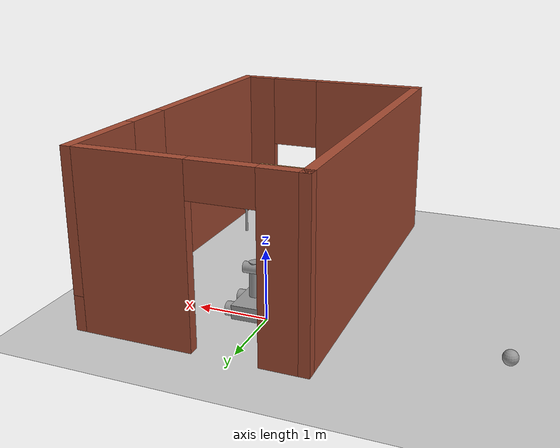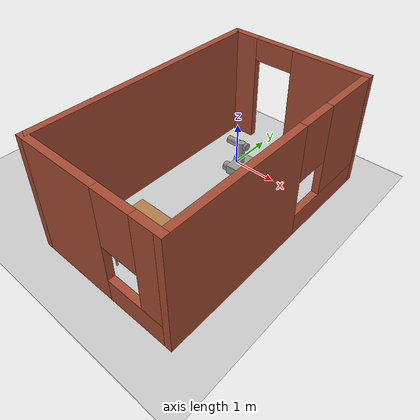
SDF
<sdf version="1.7">
 <world name="default">
  <plugin name="hello" filename="libhello.so"/>
  <light name="sun" type="directional">
   <pose>0 0 10 0 -0 0</pose>
   <diffuse>0.8 0.8 0.8 1</diffuse>
   <specular>0.2 0.2 0.2 1</specular>
   <attenuation>
    <range>1000</range>
    <constant>0.9</constant>
    <linear>0.01</linear>
    <quadratic>0.001</quadratic>
   </attenuation>
   <direction>-0.5 0.1 -0.9</direction>
   <spot><inner_angle>0</inner_angle><outer_angle>0</outer_angle><falloff>0</falloff></spot>
  </light>
  <model name="ground_plane">
   <static>1</static>
   <link name="link">
    <collision name="collision">
     <geometry><plane><normal>0 0 1</normal><size>100 100</size></plane></geometry>
     <surface>
      <contact><collide_bitmask>65535</collide_bitmask></contact>
      <friction><ode><mu>100</mu><mu2>50</mu2></ode></friction>
     </surface>
    </collision>
    <visual name="visual">
     <cast_shadows>0</cast_shadows>
     <geometry><plane><normal>0 0 1</normal><size>100 100</size></plane></geometry>
     <material>
      <script><uri>file://media/materials/scripts/gazebo.material</uri><name>Gazebo/Grey</name></script>
     </material>
    </visual>
   </link>
  </model>
  <gravity>0 0 -9.8</gravity>
  <magnetic_field>6e-06 2.3e-05 -4.2e-05</magnetic_field>
  <atmosphere type="adiabatic"/>
  <physics type="ode">
   <max_step_size>0.001</max_step_size>
   <real_time_factor>1</real_time_factor>
   <real_time_update_rate>1000</real_time_update_rate>
  </physics>
  <scene><ambient>0.4 0.4 0.4 1</ambient><background>0.7 0.7 0.7 1</background><shadows>1</shadows></scene>
  <spherical_coordinates>
   <surface_model>EARTH_WGS84</surface_model>
   <latitude_deg>0</latitude_deg>
   <longitude_deg>0</longitude_deg>
   <elevation>0</elevation>
   <heading_deg>0</heading_deg>
  </spherical_coordinates>
  <model name="Building">
   <pose>0.57 -1.52531 0 0 -0 0</pose>
   <link name="Wall_0">
    <pose>0 -2.63469 0 0 -0 0</pose>
    <visual name="Wall_0_Visual_0">
     <pose>-0.7075 0 1.25 0 -0 0</pose>
     <geometry><box><size>1.835 0.15 2.5</size></box></geometry>
     <material>
      <script><uri>file://media/materials/scripts/gazebo.material</uri><name>Gazebo/Bricks</name></script>
      <ambient>1 1 1 1</ambient>
     </material>
     <meta><layer>0</layer></meta>
    </visual>
    <collision name="Wall_0_Collision_0">
     <geometry><box><size>1.835 0.15 2.5</size></box></geometry>
     <pose>-0.7075 0 1.25 0 -0 0</pose>
    </collision>
    <visual name="Wall_0_Visual_1">
     <pose>0.9175 0 0.25 0 -0 0</pose>
     <geometry><box><size>1.415 0.15 0.5</size></box></geometry>
     <material>
      <script><uri>file://media/materials/scripts/gazebo.material</uri><name>Gazebo/Bricks</name></script>
      <ambient>1 1 1 1</ambient>
     </material>
     <meta><layer>0</layer></meta>
    </visual>
    <collision name="Wall_0_Collision_1">
     <geometry><box><size>1.415 0.15 0.5</size></box></geometry>
     <pose>0.9175 0 0.25 0 -0 0</pose>
    </collision>
    <visual name="Wall_0_Visual_2">
     <pose>1.3175 0 1.5 0 -0 0</pose>
     <geometry><box><size>0.615 0.15 2</size></box></geometry>
     <material>
      <script><uri>file://media/materials/scripts/gazebo.material</uri><name>Gazebo/Bricks</name></script>
      <ambient>1 1 1 1</ambient>
     </material>
     <meta><layer>0</layer></meta>
    </visual>
    <collision name="Wall_0_Collision_2">
     <geometry><box><size>0.615 0.15 2</size></box></geometry>
     <pose>1.3175 0 1.5 0 -0 0</pose>
    </collision>
    <visual name="Wall_0_Visual_3">
     <pose>0.61 0 1.9 0 -0 0</pose>
     <geometry><box><size>0.8 0.15 1.2</size></box></geometry>
     <material>
      <script><uri>file://media/materials/scripts/gazebo.material</uri><name>Gazebo/Bricks</name></script>
      <ambient>1 1 1 1</ambient>
     </material>
     <meta><layer>0</layer></meta>
    </visual>
    <collision name="Wall_0_Collision_3">
     <geometry><box><size>0.8 0.15 1.2</size></box></geometry>
     <pose>0.61 0 1.9 0 -0 0</pose>
    </collision>
   </link>
   <link name="Wall_1">
    <pose>1.55 -0 0 0 -0 1.5708</pose>
    <visual name="Wall_1_Visual_0">
     <pose>-1.1075 0 1.25 0 -0 0</pose>
     <geometry><box><size>3.20444 0.15 2.5</size></box></geometry>
     <material>
      <script><uri>file://media/materials/scripts/gazebo.material</uri><name>Gazebo/Bricks</name></script>
      <ambient>1 1 1 1</ambient>
     </material>
     <meta><layer>0</layer></meta>
    </visual>
    <collision name="Wall_1_Collision_0">
     <geometry><box><size>3.20444 0.15 2.5</size></box></geometry>
     <pose>-1.1075 0 1.25 0 -0 0</pose>
    </collision>
    <visual name="Wall_1_Visual_1">
     <pose>1.60222 0 0.25 0 -0 0</pose>
     <geometry><box><size>2.21499 0.15 0.5</size></box></geometry>
     <material>
      <script><uri>file://media/materials/scripts/gazebo.material</uri><name>Gazebo/Bricks</name></script>
      <ambient>1 1 1 1</ambient>
     </material>
     <meta><layer>0</layer></meta>
    </visual>
    <collision name="Wall_1_Collision_1">
     <geometry><box><size>2.21499 0.15 0.5</size></box></geometry>
     <pose>1.60222 0 0.25 0 -0 0</pose>
    </collision>
    <visual name="Wall_1_Visual_2">
     <pose>2.00222 0 1.5 0 -0 0</pose>
     <geometry><box><size>1.41499 0.15 2</size></box></geometry>
     <material>
      <script><uri>file://media/materials/scripts/gazebo.material</uri><name>Gazebo/Bricks</name></script>
      <ambient>1 1 1 1</ambient>
     </material>
     <meta><layer>0</layer></meta>
    </visual>
    <collision name="Wall_1_Collision_2">
     <geometry><box><size>1.41499 0.15 2</size></box></geometry>
     <pose>2.00222 0 1.5 0 -0 0</pose>
    </collision>
    <visual name="Wall_1_Visual_3">
     <pose>0.894725 0 1.9 0 -0 0</pose>
     <geometry><box><size>0.8 0.15 1.2</size></box></geometry>
     <material>
      <script><uri>file://media/materials/scripts/gazebo.material</uri><name>Gazebo/Bricks</name></script>
      <ambient>1 1 1 1</ambient>
     </material>
     <meta><layer>0</layer></meta>
    </visual>
    <collision name="Wall_1_Collision_3">
     <geometry><box><size>0.8 0.15 1.2</size></box></geometry>
     <pose>0.894725 0 1.9 0 -0 0</pose>
    </collision>
   </link>
   <link name="Wall_2">
    <pose>0 2.63469 0 0 -0 3.14159</pose>
    <visual name="Wall_2_Visual_0">
     <pose>-0.781353 0 1.25 0 -0 0</pose>
     <geometry><box><size>1.68729 0.15 2.5</size></box></geometry>
     <material>
      <script><uri>file://media/materials/scripts/gazebo.material</uri><name>Gazebo/Bricks</name></script>
      <ambient>1 1 1 1</ambient>
     </material>
     <meta><layer>0</layer></meta>
    </visual>
    <collision name="Wall_2_Collision_0">
     <geometry><box><size>1.68729 0.15 2.5</size></box></geometry>
     <pose>-0.781353 0 1.25 0 -0 0</pose>
    </collision>
    <visual name="Wall_2_Visual_1">
     <pose>1.29365 0 1.25 0 -0 0</pose>
     <geometry><box><size>0.662706 0.15 2.5</size></box></geometry>
     <material>
      <script><uri>file://media/materials/scripts/gazebo.material</uri><name>Gazebo/Bricks</name></script>
      <ambient>1 1 1 1</ambient>
     </material>
     <meta><layer>0</layer></meta>
    </visual>
    <collision name="Wall_2_Collision_1">
     <geometry><box><size>0.662706 0.15 2.5</size></box></geometry>
     <pose>1.29365 0 1.25 0 -0 0</pose>
    </collision>
    <visual name="Wall_2_Visual_2">
     <pose>0.512294 0 2.25 0 -0 0</pose>
     <geometry><box><size>0.9 0.15 0.5</size></box></geometry>
     <material>
      <script><uri>file://media/materials/scripts/gazebo.material</uri><name>Gazebo/Bricks</name></script>
      <ambient>1 1 1 1</ambient>
     </material>
     <meta><layer>0</layer></meta>
    </visual>
    <collision name="Wall_2_Collision_2">
     <geometry><box><size>0.9 0.15 0.5</size></box></geometry>
     <pose>0.512294 0 2.25 0 -0 0</pose>
    </collision>
   </link>
   <link name="Wall_3">
    <collision name="Wall_3_Collision">
     <geometry><box><size>5.41944 0.15 2.5</size></box></geometry>
     <pose>0 0 1.25 0 -0 0</pose>
    </collision>
    <visual name="Wall_3_Visual">
     <pose>0 0 1.25 0 -0 0</pose>
     <geometry><box><size>5.41944 0.15 2.5</size></box></geometry>
     <material>
      <script><uri>file://media/materials/scripts/gazebo.material</uri><name>Gazebo/Bricks</name></script>
      <ambient>1 1 1 1</ambient>
     </material>
     <meta><layer>0</layer></meta>
    </visual>
    <pose>-1.55 -0 0 0 -0 -1.5708</pose>
   </link>
   <static>1</static>
  </model>
  <light name="user_point_light_0" type="point">
   <pose>0.57585 -1.92852 1 0 -0 0</pose>
   <diffuse>0.5 0.5 0.5 1</diffuse>
   <specular>0.1 0.1 0.1 1</specular>
   <attenuation>
    <range>20</range>
    <constant>0.5</constant>
    <linear>0.01</linear>
    <quadratic>0.001</quadratic>
   </attenuation>
   <cast_shadows>0</cast_shadows>
   <direction>0 0 -1</direction>
   <spot><inner_angle>0</inner_angle><outer_angle>0</outer_angle><falloff>0</falloff></spot>
  </light>
  <model name="table">
   <static>1</static>
   <link name="link">
    <collision name="surface">
     <pose>0 0 1 0 -0 0</pose>
     <geometry><box><size>1.5 0.8 0.03</size></box></geometry>
     <surface><friction><ode><mu>0.6</mu><mu2>0.6</mu2></ode></friction></surface>
    </collision>
    <visual name="visual1">
     <pose>0 0 1 0 -0 0</pose>
     <geometry><box><size>1.5 0.8 0.03</size></box></geometry>
     <material>
      <script><uri>file://media/materials/scripts/gazebo.material</uri><name>Gazebo/Wood</name></script>
     </material>
    </visual>
    <collision name="front_left_leg">
     <pose>0.68 0.38 0.5 0 -0 0</pose>
     <geometry><cylinder><radius>0.02</radius><length>1</length></cylinder></geometry>
    </collision>
    <visual name="front_left_leg">
     <pose>0.68 0.38 0.5 0 -0 0</pose>
     <geometry><cylinder><radius>0.02</radius><length>1</length></cylinder></geometry>
     <material>
      <script><uri>file://media/materials/scripts/gazebo.material</uri><name>Gazebo/Grey</name></script>
     </material>
    </visual>
    <collision name="front_right_leg">
     <pose>0.68 -0.38 0.5 0 -0 0</pose>
     <geometry><cylinder><radius>0.02</radius><length>1</length></cylinder></geometry>
    </collision>
    <visual name="front_right_leg">
     <pose>0.68 -0.38 0.5 0 -0 0</pose>
     <geometry><cylinder><radius>0.02</radius><length>1</length></cylinder></geometry>
     <material>
      <script><uri>file://media/materials/scripts/gazebo.material</uri><name>Gazebo/Grey</name></script>
     </material>
    </visual>
    <collision name="back_right_leg">
     <pose>-0.68 -0.38 0.5 0 -0 0</pose>
     <geometry><cylinder><radius>0.02</radius><length>1</length></cylinder></geometry>
    </collision>
    <visual name="back_right_leg">
     <pose>-0.68 -0.38 0.5 0 -0 0</pose>
     <geometry><cylinder><radius>0.02</radius><length>1</length></cylinder></geometry>
     <material>
      <script><uri>file://media/materials/scripts/gazebo.material</uri><name>Gazebo/Grey</name></script>
     </material>
    </visual>
    <collision name="back_left_leg">
     <pose>-0.68 0.38 0.5 0 -0 0</pose>
     <geometry><cylinder><radius>0.02</radius><length>1</length></cylinder></geometry>
    </collision>
    <visual name="back_left_leg">
     <pose>-0.68 0.38 0.5 0 -0 0</pose>
     <geometry><cylinder><radius>0.02</radius><length>1</length></cylinder></geometry>
     <material>
      <script><uri>file://media/materials/scripts/gazebo.material</uri><name>Gazebo/Grey</name></script>
     </material>
    </visual>
   </link>
   <pose>0.959394 -3.31903 0 0 -0 0</pose>
  </model>
  <model name="Robot">
   <link name="link_0">
    <inertial>
     <mass>1</mass>
     <inertia>
      <ixx>0.166667</ixx>
      <ixy>0</ixy>
      <ixz>0</ixz>
      <iyy>0.166667</iyy>
      <iyz>0</iyz>
      <izz>0.166667</izz>
     </inertia>
    </inertial>
    <pose>0.021433 0.001418 -0.135686 0 -0 0</pose>
    <visual name="visual">
     <geometry><box><size>0.4 0.6 0.2</size></box></geometry>
     <material>
      <lighting>1</lighting>
      <script><uri>file://media/materials/scripts/gazebo.material</uri><name>Gazebo/Grey</name></script>
      <shader type="pixel"><normal_map>__default__</normal_map></shader>
      <ambient>0.3 0.3 0.3 1</ambient>
      <diffuse>0.7 0.7 0.7 1</diffuse>
      <specular>0.01 0.01 0.01 1</specular>
      <emissive>0 0 0 1</emissive>
     </material>
    </visual>
    <collision name="collision">
     <geometry><box><size>0.4 0.6 0.2</size></box></geometry>
     <surface>
      <friction>
       <ode><mu>1</mu><mu2>1</mu2><fdir1>0 0 0</fdir1><slip1>0</slip1><slip2>0</slip2></ode>
       <torsional>
        <coefficient>1</coefficient>
        <patch_radius>0</patch_radius>
        <surface_radius>0</surface_radius>
        <use_patch_radius>1</use_patch_radius>
        <ode><slip>0</slip></ode>
       </torsional>
      </friction>
      <bounce><restitution_coefficient>0</restitution_coefficient><threshold>1e+06</threshold></bounce>
      <contact>
       <collide_without_contact>0</collide_without_contact>
       <collide_without_contact_bitmask>1</collide_without_contact_bitmask>
       <collide_bitmask>1</collide_bitmask>
       <ode>
        <soft_cfm>0</soft_cfm>
        <soft_erp>0.2</soft_erp>
        <kp>1e+13</kp>
        <kd>1</kd>
        <max_vel>0.01</max_vel>
        <min_depth>0</min_depth>
       </ode>
       <bullet>
        <split_impulse>1</split_impulse>
        <split_impulse_penetration_threshold>-0.01</split_impulse_penetration_threshold>
        <soft_cfm>0</soft_cfm>
        <soft_erp>0.2</soft_erp>
        <kp>1e+13</kp>
        <kd>1</kd>
       </bullet>
      </contact>
     </surface>
    </collision>
   </link>
   <link name="link_1">
    <inertial>
     <mass>1</mass>
     <inertia><ixx>0.145833</ixx><ixy>0</ixy><ixz>0</ixz><iyy>0.145833</iyy><iyz>0</iyz><izz>0.125</izz></inertia>
    </inertial>
    <pose>0.271625 -0.19847 -0.135686 1.57 -0 1.57</pose>
    <visual name="visual">
     <geometry><cylinder><radius>0.1</radius><length>0.1</length></cylinder></geometry>
     <material>
      <lighting>1</lighting>
      <script><uri>file://media/materials/scripts/gazebo.material</uri><name>Gazebo/Grey</name></script>
      <shader type="pixel"><normal_map>__default__</normal_map></shader>
      <ambient>0.3 0.3 0.3 1</ambient>
      <diffuse>0.7 0.7 0.7 1</diffuse>
      <specular>0.01 0.01 0.01 1</specular>
      <emissive>0 0 0 1</emissive>
     </material>
    </visual>
    <collision name="collision">
     <geometry><cylinder><radius>0.1</radius><length>0.1</length></cylinder></geometry>
     <surface>
      <friction>
       <ode><mu>1</mu><mu2>1</mu2><fdir1>0 0 0</fdir1><slip1>0</slip1><slip2>0</slip2></ode>
       <torsional>
        <coefficient>1</coefficient>
        <patch_radius>0</patch_radius>
        <surface_radius>0</surface_radius>
        <use_patch_radius>1</use_patch_radius>
        <ode><slip>0</slip></ode>
       </torsional>
      </friction>
      <bounce><restitution_coefficient>0</restitution_coefficient><threshold>1e+06</threshold></bounce>
      <contact>
       <collide_without_contact>0</collide_without_contact>
       <collide_without_contact_bitmask>1</collide_without_contact_bitmask>
       <collide_bitmask>1</collide_bitmask>
       <ode>
        <soft_cfm>0</soft_cfm>
        <soft_erp>0.2</soft_erp>
        <kp>1e+13</kp>
        <kd>1</kd>
        <max_vel>0.01</max_vel>
        <min_depth>0</min_depth>
       </ode>
       <bullet>
        <split_impulse>1</split_impulse>
        <split_impulse_penetration_threshold>-0.01</split_impulse_penetration_threshold>
        <soft_cfm>0</soft_cfm>
        <soft_erp>0.2</soft_erp>
        <kp>1e+13</kp>
        <kd>1</kd>
       </bullet>
      </contact>
     </surface>
    </collision>
   </link>
   <link name="link_1_clone">
    <inertial>
     <mass>1</mass>
     <inertia><ixx>0.145833</ixx><ixy>0</ixy><ixz>0</ixz><iyy>0.145833</iyy><iyz>0</iyz><izz>0.125</izz></inertia>
    </inertial>
    <pose>-0.228726 0.201378 -0.135686 1.57 -0 1.57</pose>
    <visual name="visual">
     <geometry><cylinder><radius>0.1</radius><length>0.1</length></cylinder></geometry>
     <material>
      <lighting>1</lighting>
      <script><uri>file://media/materials/scripts/gazebo.material</uri><name>Gazebo/Grey</name></script>
      <shader type="pixel"><normal_map>__default__</normal_map></shader>
      <ambient>0.3 0.3 0.3 1</ambient>
      <diffuse>0.7 0.7 0.7 1</diffuse>
      <specular>0.01 0.01 0.01 1</specular>
      <emissive>0 0 0 1</emissive>
     </material>
    </visual>
    <collision name="collision">
     <geometry><cylinder><radius>0.1</radius><length>0.1</length></cylinder></geometry>
     <surface>
      <friction>
       <ode><mu>1</mu><mu2>1</mu2><fdir1>0 0 0</fdir1><slip1>0</slip1><slip2>0</slip2></ode>
       <torsional>
        <coefficient>1</coefficient>
        <patch_radius>0</patch_radius>
        <surface_radius>0</surface_radius>
        <use_patch_radius>1</use_patch_radius>
        <ode><slip>0</slip></ode>
       </torsional>
      </friction>
      <bounce><restitution_coefficient>0</restitution_coefficient><threshold>1e+06</threshold></bounce>
      <contact>
       <collide_without_contact>0</collide_without_contact>
       <collide_without_contact_bitmask>1</collide_without_contact_bitmask>
       <collide_bitmask>1</collide_bitmask>
       <ode>
        <soft_cfm>0</soft_cfm>
        <soft_erp>0.2</soft_erp>
        <kp>1e+13</kp>
        <kd>1</kd>
        <max_vel>0.01</max_vel>
        <min_depth>0</min_depth>
       </ode>
       <bullet>
        <split_impulse>1</split_impulse>
        <split_impulse_penetration_threshold>-0.01</split_impulse_penetration_threshold>
        <soft_cfm>0</soft_cfm>
        <soft_erp>0.2</soft_erp>
        <kp>1e+13</kp>
        <kd>1</kd>
       </bullet>
      </contact>
     </surface>
    </collision>
   </link>
   <link name="link_1_clone_0">
    <inertial>
     <mass>1</mass>
     <inertia><ixx>0.145833</ixx><ixy>0</ixy><ixz>0</ixz><iyy>0.145833</iyy><iyz>0</iyz><izz>0.125</izz></inertia>
    </inertial>
    <pose>-0.228726 -0.198542 -0.135686 1.57 -0 1.57</pose>
    <visual name="visual">
     <geometry><cylinder><radius>0.1</radius><length>0.1</length></cylinder></geometry>
     <material>
      <lighting>1</lighting>
      <script><uri>file://media/materials/scripts/gazebo.material</uri><name>Gazebo/Grey</name></script>
      <shader type="pixel"><normal_map>__default__</normal_map></shader>
      <ambient>0.3 0.3 0.3 1</ambient>
      <diffuse>0.7 0.7 0.7 1</diffuse>
      <specular>0.01 0.01 0.01 1</specular>
      <emissive>0 0 0 1</emissive>
     </material>
    </visual>
    <collision name="collision">
     <geometry><cylinder><radius>0.1</radius><length>0.1</length></cylinder></geometry>
     <surface>
      <friction>
       <ode><mu>1</mu><mu2>1</mu2><fdir1>0 0 0</fdir1><slip1>0</slip1><slip2>0</slip2></ode>
       <torsional>
        <coefficient>1</coefficient>
        <patch_radius>0</patch_radius>
        <surface_radius>0</surface_radius>
        <use_patch_radius>1</use_patch_radius>
        <ode><slip>0</slip></ode>
       </torsional>
      </friction>
      <bounce><restitution_coefficient>0</restitution_coefficient><threshold>1e+06</threshold></bounce>
      <contact>
       <collide_without_contact>0</collide_without_contact>
       <collide_without_contact_bitmask>1</collide_without_contact_bitmask>
       <collide_bitmask>1</collide_bitmask>
       <ode>
        <soft_cfm>0</soft_cfm>
        <soft_erp>0.2</soft_erp>
        <kp>1e+13</kp>
        <kd>1</kd>
        <max_vel>0.01</max_vel>
        <min_depth>0</min_depth>
       </ode>
       <bullet>
        <split_impulse>1</split_impulse>
        <split_impulse_penetration_threshold>-0.01</split_impulse_penetration_threshold>
        <soft_cfm>0</soft_cfm>
        <soft_erp>0.2</soft_erp>
        <kp>1e+13</kp>
        <kd>1</kd>
       </bullet>
      </contact>
     </surface>
    </collision>
   </link>
   <link name="link_1_clone_1">
    <inertial>
     <mass>1</mass>
     <inertia><ixx>0.145833</ixx><ixy>0</ixy><ixz>0</ixz><iyy>0.145833</iyy><iyz>0</iyz><izz>0.125</izz></inertia>
    </inertial>
    <pose>0.271593 0.201378 -0.135686 1.57 -0 1.57</pose>
    <visual name="visual">
     <geometry><cylinder><radius>0.1</radius><length>0.1</length></cylinder></geometry>
     <material>
      <lighting>1</lighting>
      <script><uri>file://media/materials/scripts/gazebo.material</uri><name>Gazebo/Grey</name></script>
      <shader type="pixel"><normal_map>__default__</normal_map></shader>
      <ambient>0.3 0.3 0.3 1</ambient>
      <diffuse>0.7 0.7 0.7 1</diffuse>
      <specular>0.01 0.01 0.01 1</specular>
      <emissive>0 0 0 1</emissive>
     </material>
    </visual>
    <collision name="collision">
     <geometry><cylinder><radius>0.1</radius><length>0.1</length></cylinder></geometry>
     <surface>
      <friction>
       <ode><mu>1</mu><mu2>1</mu2><fdir1>0 0 0</fdir1><slip1>0</slip1><slip2>0</slip2></ode>
       <torsional>
        <coefficient>1</coefficient>
        <patch_radius>0</patch_radius>
        <surface_radius>0</surface_radius>
        <use_patch_radius>1</use_patch_radius>
        <ode><slip>0</slip></ode>
       </torsional>
      </friction>
      <bounce><restitution_coefficient>0</restitution_coefficient><threshold>1e+06</threshold></bounce>
      <contact>
       <collide_without_contact>0</collide_without_contact>
       <collide_without_contact_bitmask>1</collide_without_contact_bitmask>
       <collide_bitmask>1</collide_bitmask>
       <ode>
        <soft_cfm>0</soft_cfm>
        <soft_erp>0.2</soft_erp>
        <kp>1e+13</kp>
        <kd>1</kd>
        <max_vel>0.01</max_vel>
        <min_depth>0</min_depth>
       </ode>
       <bullet>
        <split_impulse>1</split_impulse>
        <split_impulse_penetration_threshold>-0.01</split_impulse_penetration_threshold>
        <soft_cfm>0</soft_cfm>
        <soft_erp>0.2</soft_erp>
        <kp>1e+13</kp>
        <kd>1</kd>
       </bullet>
      </contact>
     </surface>
    </collision>
   </link>
   <link name="link_2">
    <inertial>
     <mass>1</mass>
     <inertia><ixx>0.145833</ixx><ixy>0</ixy><ixz>0</ixz><iyy>0.145833</iyy><iyz>0</iyz><izz>0.125</izz></inertia>
    </inertial>
    <pose>0.001433 -0.018582 0.254314 0 -0 0</pose>
    <visual name="visual">
     <geometry><cylinder><radius>0.08</radius><length>0.5</length></cylinder></geometry>
     <material>
      <lighting>1</lighting>
      <script><uri>file://media/materials/scripts/gazebo.material</uri><name>Gazebo/Grey</name></script>
      <shader type="pixel"><normal_map>__default__</normal_map></shader>
      <ambient>0.3 0.3 0.3 1</ambient>
      <diffuse>0.7 0.7 0.7 1</diffuse>
      <specular>0.01 0.01 0.01 1</specular>
      <emissive>0 0 0 1</emissive>
     </material>
    </visual>
    <collision name="collision">
     <geometry><cylinder><radius>0.08</radius><length>0.5</length></cylinder></geometry>
     <surface>
      <friction>
       <ode><mu>1</mu><mu2>1</mu2><fdir1>0 0 0</fdir1><slip1>0</slip1><slip2>0</slip2></ode>
       <torsional>
        <coefficient>1</coefficient>
        <patch_radius>0</patch_radius>
        <surface_radius>0</surface_radius>
        <use_patch_radius>1</use_patch_radius>
        <ode><slip>0</slip></ode>
       </torsional>
      </friction>
      <bounce><restitution_coefficient>0</restitution_coefficient><threshold>1e+06</threshold></bounce>
      <contact>
       <collide_without_contact>0</collide_without_contact>
       <collide_without_contact_bitmask>1</collide_without_contact_bitmask>
       <collide_bitmask>1</collide_bitmask>
       <ode>
        <soft_cfm>0</soft_cfm>
        <soft_erp>0.2</soft_erp>
        <kp>1e+13</kp>
        <kd>1</kd>
        <max_vel>0.01</max_vel>
        <min_depth>0</min_depth>
       </ode>
       <bullet>
        <split_impulse>1</split_impulse>
        <split_impulse_penetration_threshold>-0.01</split_impulse_penetration_threshold>
        <soft_cfm>0</soft_cfm>
        <soft_erp>0.2</soft_erp>
        <kp>1e+13</kp>
        <kd>1</kd>
       </bullet>
      </contact>
     </surface>
    </collision>
   </link>
   <link name="link_2_clone">
    <inertial>
     <mass>1</mass>
     <inertia><ixx>0.145833</ixx><ixy>0</ixy><ixz>0</ixz><iyy>0.145833</iyy><iyz>0</iyz><izz>0.125</izz></inertia>
    </inertial>
    <pose>-0.108632 0.011418 0.424115 -0 1.57 2.4e-05</pose>
    <visual name="visual">
     <geometry><cylinder><radius>0.08</radius><length>0.5</length></cylinder></geometry>
     <material>
      <lighting>1</lighting>
      <script><uri>file://media/materials/scripts/gazebo.material</uri><name>Gazebo/Grey</name></script>
      <shader type="pixel"><normal_map>__default__</normal_map></shader>
      <ambient>0.3 0.3 0.3 1</ambient>
      <diffuse>0.7 0.7 0.7 1</diffuse>
      <specular>0.01 0.01 0.01 1</specular>
      <emissive>0 0 0 1</emissive>
     </material>
    </visual>
    <collision name="collision">
     <geometry><cylinder><radius>0.08</radius><length>0.5</length></cylinder></geometry>
     <surface>
      <friction>
       <ode><mu>1</mu><mu2>1</mu2><fdir1>0 0 0</fdir1><slip1>0</slip1><slip2>0</slip2></ode>
       <torsional>
        <coefficient>1</coefficient>
        <patch_radius>0</patch_radius>
        <surface_radius>0</surface_radius>
        <use_patch_radius>1</use_patch_radius>
        <ode><slip>0</slip></ode>
       </torsional>
      </friction>
      <bounce><restitution_coefficient>0</restitution_coefficient><threshold>1e+06</threshold></bounce>
      <contact>
       <collide_without_contact>0</collide_without_contact>
       <collide_without_contact_bitmask>1</collide_without_contact_bitmask>
       <collide_bitmask>1</collide_bitmask>
       <ode>
        <soft_cfm>0</soft_cfm>
        <soft_erp>0.2</soft_erp>
        <kp>1e+13</kp>
        <kd>1</kd>
        <max_vel>0.01</max_vel>
        <min_depth>0</min_depth>
       </ode>
       <bullet>
        <split_impulse>1</split_impulse>
        <split_impulse_penetration_threshold>-0.01</split_impulse_penetration_threshold>
        <soft_cfm>0</soft_cfm>
        <soft_erp>0.2</soft_erp>
        <kp>1e+13</kp>
        <kd>1</kd>
       </bullet>
      </contact>
     </surface>
    </collision>
   </link>
   <joint name="link_0_JOINT_2" type="revolute">
    <parent>link_0</parent>
    <child>link_1</child>
    <axis>
     <xyz>0 0 1</xyz>
     <limit>
      <lower>-1.79769e+308</lower>
      <upper>1.79769e+308</upper>
      <effort>-1</effort>
      <velocity>-1</velocity>
     </limit>
     <dynamics>
      <spring_reference>0</spring_reference>
      <spring_stiffness>0</spring_stiffness>
      <damping>0</damping>
     </dynamics>
    </axis>
    <physics>
     <ode><limit><cfm>0</cfm><erp>0.2</erp></limit><suspension><cfm>0</cfm><erp>0.2</erp></suspension></ode>
    </physics>
   </joint>
   <joint name="link_0_JOINT_3" type="revolute">
    <parent>link_0</parent>
    <child>link_1_clone_1</child>
    <axis>
     <xyz>0 0 1</xyz>
     <limit>
      <lower>-1.79769e+308</lower>
      <upper>1.79769e+308</upper>
      <effort>-1</effort>
      <velocity>-1</velocity>
     </limit>
     <dynamics>
      <spring_reference>0</spring_reference>
      <spring_stiffness>0</spring_stiffness>
      <damping>0</damping>
     </dynamics>
    </axis>
    <physics>
     <ode><limit><cfm>0</cfm><erp>0.2</erp></limit><suspension><cfm>0</cfm><erp>0.2</erp></suspension></ode>
    </physics>
   </joint>
   <joint name="link_0_JOINT_4" type="revolute">
    <parent>link_0</parent>
    <child>link_1_clone_0</child>
    <axis>
     <xyz>0 0 1</xyz>
     <limit>
      <lower>-1.79769e+308</lower>
      <upper>1.79769e+308</upper>
      <effort>-1</effort>
      <velocity>-1</velocity>
     </limit>
     <dynamics>
      <spring_reference>0</spring_reference>
      <spring_stiffness>0</spring_stiffness>
      <damping>0</damping>
     </dynamics>
    </axis>
    <physics>
     <ode><limit><cfm>0</cfm><erp>0.2</erp></limit><suspension><cfm>0</cfm><erp>0.2</erp></suspension></ode>
    </physics>
   </joint>
   <joint name="link_0_JOINT_5" type="revolute">
    <parent>link_0</parent>
    <child>link_1_clone</child>
    <axis>
     <xyz>0 0 1</xyz>
     <limit>
      <lower>-1.79769e+308</lower>
      <upper>1.79769e+308</upper>
      <effort>-1</effort>
      <velocity>-1</velocity>
     </limit>
     <dynamics>
      <spring_reference>0</spring_reference>
      <spring_stiffness>0</spring_stiffness>
      <damping>0</damping>
     </dynamics>
    </axis>
    <physics>
     <ode><limit><cfm>0</cfm><erp>0.2</erp></limit><suspension><cfm>0</cfm><erp>0.2</erp></suspension></ode>
    </physics>
   </joint>
   <joint name="link_0_JOINT_6" type="revolute">
    <parent>link_0</parent>
    <child>link_2</child>
    <axis>
     <xyz>0 0 1</xyz>
     <limit>
      <lower>-1.79769e+308</lower>
      <upper>1.79769e+308</upper>
      <effort>-1</effort>
      <velocity>-1</velocity>
     </limit>
     <dynamics>
      <spring_reference>0</spring_reference>
      <spring_stiffness>0</spring_stiffness>
      <damping>0</damping>
     </dynamics>
    </axis>
    <physics>
     <ode><limit><cfm>0</cfm><erp>0.2</erp></limit><suspension><cfm>0</cfm><erp>0.2</erp></suspension></ode>
    </physics>
   </joint>
   <joint name="link_2_JOINT_8" type="revolute">
    <parent>link_2</parent>
    <child>link_2_clone</child>
    <axis>
     <xyz>0 0 1</xyz>
     <limit>
      <lower>-1.79769e+308</lower>
      <upper>1.79769e+308</upper>
      <effort>-1</effort>
      <velocity>-1</velocity>
     </limit>
     <dynamics>
      <spring_reference>0</spring_reference>
      <spring_stiffness>0</spring_stiffness>
      <damping>0</damping>
     </dynamics>
    </axis>
    <physics>
     <ode><limit><cfm>0</cfm><erp>0.2</erp></limit><suspension><cfm>0</cfm><erp>0.2</erp></suspension></ode>
    </physics>
   </joint>
   <static>0</static>
   <pose>0.235827 -0.142351 0.235726 -1e-06 1e-06 0.020641</pose>
  </model>
  <model name="my_ball">
   <link name="link_0">
    <inertial>
     <mass>1</mass>
     <inertia><ixx>0.1</ixx><ixy>0</ixy><ixz>0</ixz><iyy>0.1</iyy><iyz>0</iyz><izz>0.1</izz></inertia>
    </inertial>
    <visual name="visual">
     <geometry><sphere><radius>0.1</radius></sphere></geometry>
     <material>
      <lighting>1</lighting>
      <script><uri>file://media/materials/scripts/gazebo.material</uri><name>Gazebo/Grey</name></script>
      <shader type="pixel"><normal_map>__default__</normal_map></shader>
      <ambient>1 1 1 1</ambient>
      <diffuse>1 1 1 1</diffuse>
      <specular>1 1 1 1</specular>
      <emissive>1 1 1 1</emissive>
     </material>
    </visual>
    <collision name="collision">
     <geometry><sphere><radius>0.1</radius></sphere></geometry>
     <surface>
      <friction>
       <ode><mu>1</mu><mu2>1</mu2><fdir1>0 0 0</fdir1><slip1>0</slip1><slip2>0</slip2></ode>
       <torsional>
        <coefficient>1</coefficient>
        <patch_radius>0</patch_radius>
        <surface_radius>0</surface_radius>
        <use_patch_radius>1</use_patch_radius>
        <ode><slip>0</slip></ode>
       </torsional>
      </friction>
      <bounce><restitution_coefficient>0</restitution_coefficient><threshold>1e+06</threshold></bounce>
      <contact>
       <collide_without_contact>0</collide_without_contact>
       <collide_without_contact_bitmask>1</collide_without_contact_bitmask>
       <collide_bitmask>1</collide_bitmask>
       <ode>
        <soft_cfm>0</soft_cfm>
        <soft_erp>0.2</soft_erp>
        <kp>1e+13</kp>
        <kd>1</kd>
        <max_vel>0.01</max_vel>
        <min_depth>0</min_depth>
       </ode>
       <bullet>
        <split_impulse>1</split_impulse>
        <split_impulse_penetration_threshold>-0.01</split_impulse_penetration_threshold>
        <soft_cfm>0</soft_cfm>
        <soft_erp>0.2</soft_erp>
        <kp>1e+13</kp>
        <kd>1</kd>
       </bullet>
      </contact>
     </surface>
    </collision>
   </link>
   <static>0</static>
   <pose>-3.18268 -0.001757 0.1 0 -0 0</pose>
  </model>
 </world>
</sdf>
